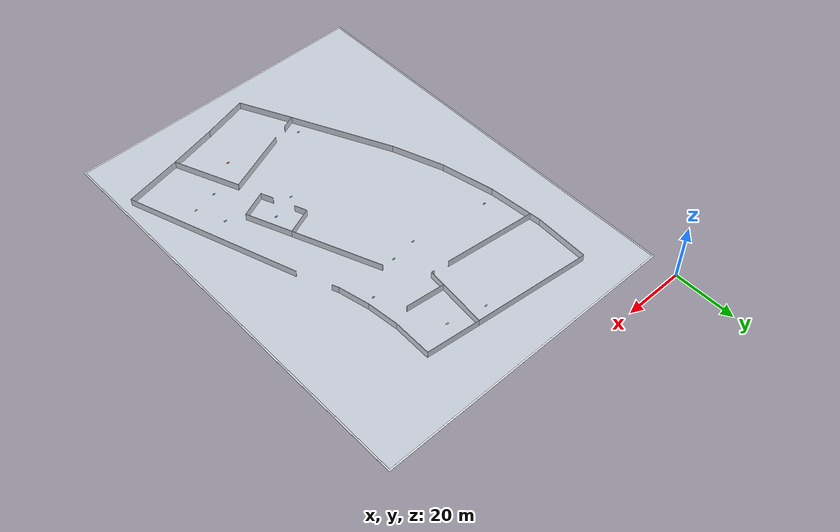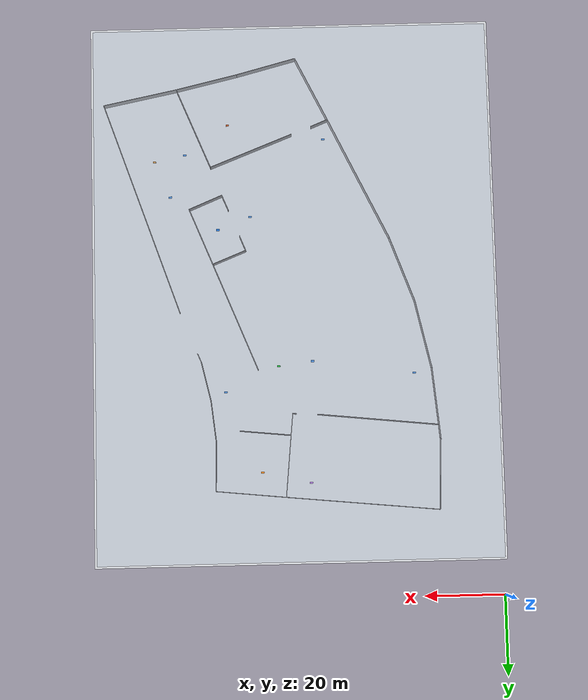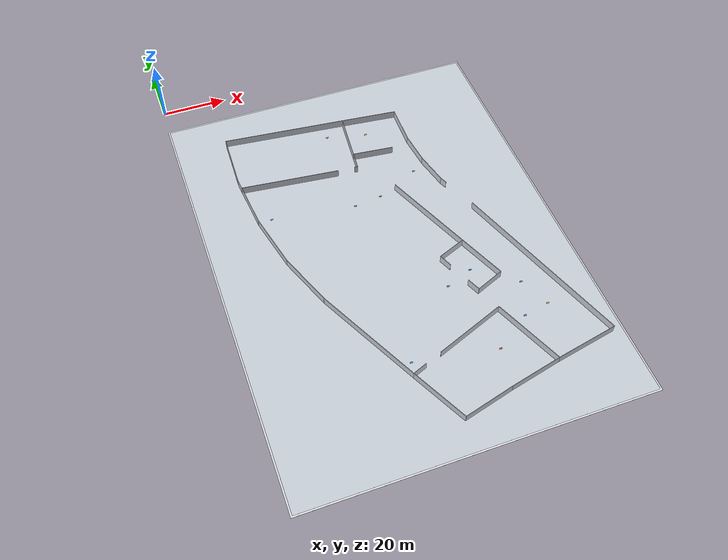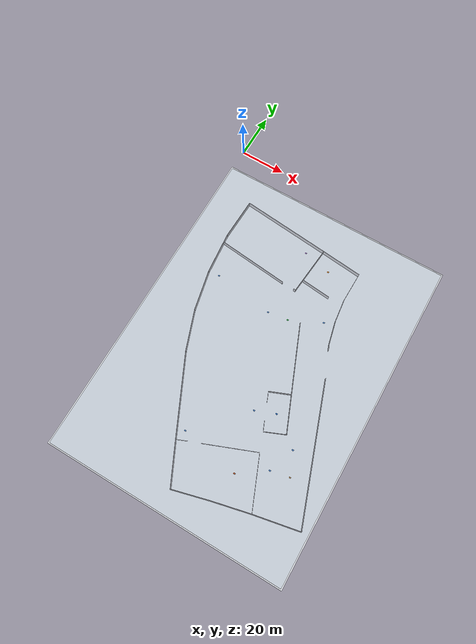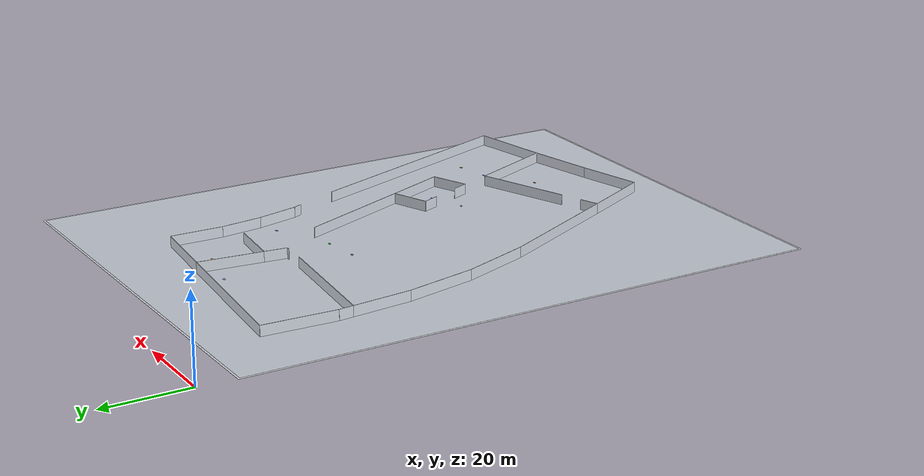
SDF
<sdf version="1.6">
 <world name="office">
  <plugin name="gazebo_ros_state" filename="libgazebo_ros_state.so">
   <ros><namespace>/gazebo</namespace></ros>
   <update_rate>10.0</update_rate>
  </plugin>
  <scene><ambient>0.86 0.87 0.89 1</ambient><background>0.94 0.95 0.97 1</background></scene>
  <physics name="default_physics" default="1" type="ode">
   <max_step_size>0.005</max_step_size>
   <real_time_factor>1</real_time_factor>
   <real_time_update_rate>200</real_time_update_rate>
  </physics>
  <light type="directional" name="sun">
   <pose>0 0 20 0 0 0</pose>
   <diffuse>0.85 0.85 0.85 1</diffuse>
   <direction>-0.4 0.15 -1.0</direction>
  </light>
  <model name="office_floor">
   <static>true</static>
   <pose>50.547 -78.140 -0.02 0 0 0</pose>
   <link name="link">
    <collision name="collision"><geometry><box><size>102.993 138.895 0.02</size></box></geometry></collision>
    <visual name="visual">
     <geometry><box><size>102.993 138.895 0.02</size></box></geometry>
     <material><ambient>0.90 0.91 0.93 1</ambient><diffuse>0.90 0.91 0.93 1</diffuse></material>
    </visual>
   </link>
  </model>
  <model name="office_floor_art">
   <static>true</static>
   <pose>50.547 -78.140 0.001 0 0 0</pose>
   <link name="link">
    <visual name="visual">
     <geometry><box><size>101.993 137.895 0.01</size></box></geometry>
     <material><ambient>0.80 0.83 0.87 1</ambient><diffuse>0.80 0.83 0.87 1</diffuse></material>
    </visual>
   </link>
  </model>
  <model name="office_wall_0">
   <static>true</static>
   <pose>65.699 -71.073 1.25 0 0 -1.187807</pose>
   <link name="link">
    <collision name="collision"><geometry><box><size>29.377 0.12 2.50</size></box></geometry></collision>
    <visual name="visual">
     <geometry><box><size>29.377 0.12 2.50</size></box></geometry>
     <material><ambient>0.78 0.80 0.84 1</ambient><diffuse>0.78 0.80 0.84 1</diffuse></material>
    </visual>
   </link>
  </model>
  <model name="office_wall_1">
   <static>true</static>
   <pose>66.986 -86.384 1.25 0 0 -2.760033</pose>
   <link name="link">
    <collision name="collision"><geometry><box><size>9.057 0.12 2.50</size></box></geometry></collision>
    <visual name="visual">
     <geometry><box><size>9.057 0.12 2.50</size></box></geometry>
     <material><ambient>0.78 0.80 0.84 1</ambient><diffuse>0.78 0.80 0.84 1</diffuse></material>
    </visual>
   </link>
  </model>
  <model name="office_wall_2">
   <static>true</static>
   <pose>63.554 -89.997 1.25 0 0 -1.190168</pose>
   <link name="link">
    <collision name="collision"><geometry><box><size>4.152 0.12 2.50</size></box></geometry></collision>
    <visual name="visual">
     <geometry><box><size>4.152 0.12 2.50</size></box></geometry>
     <material><ambient>0.78 0.80 0.84 1</ambient><diffuse>0.78 0.80 0.84 1</diffuse></material>
    </visual>
   </link>
  </model>
  <model name="office_wall_3">
   <static>true</static>
   <pose>74.091 -91.851 1.25 0 0 -1.185412</pose>
   <link name="link">
    <collision name="collision"><geometry><box><size>15.440 0.12 2.50</size></box></geometry></collision>
    <visual name="visual">
     <geometry><box><size>15.440 0.12 2.50</size></box></geometry>
     <material><ambient>0.78 0.80 0.84 1</ambient><diffuse>0.78 0.80 0.84 1</diffuse></material>
    </visual>
   </link>
  </model>
  <model name="office_wall_4">
   <static>true</static>
   <pose>72.809 -100.747 1.25 0 0 -2.747156</pose>
   <link name="link">
    <collision name="collision"><geometry><box><size>9.064 0.12 2.50</size></box></geometry></collision>
    <visual name="visual">
     <geometry><box><size>9.064 0.12 2.50</size></box></geometry>
     <material><ambient>0.78 0.80 0.84 1</ambient><diffuse>0.78 0.80 0.84 1</diffuse></material>
    </visual>
   </link>
  </model>
  <model name="office_wall_5">
   <static>true</static>
   <pose>67.823 -100.556 1.25 0 0 1.964148</pose>
   <link name="link">
    <collision name="collision"><geometry><box><size>4.185 0.12 2.50</size></box></geometry></collision>
    <visual name="visual">
     <geometry><box><size>4.185 0.12 2.50</size></box></geometry>
     <material><ambient>0.78 0.80 0.84 1</ambient><diffuse>0.78 0.80 0.84 1</diffuse></material>
    </visual>
   </link>
  </model>
  <model name="office_wall_6">
   <static>true</static>
   <pose>89.161 -99.519 1.25 0 0 1.904540</pose>
   <link name="link">
    <collision name="collision"><geometry><box><size>57.485 0.12 2.50</size></box></geometry></collision>
    <visual name="visual">
     <geometry><box><size>57.485 0.12 2.50</size></box></geometry>
     <material><ambient>0.78 0.80 0.84 1</ambient><diffuse>0.78 0.80 0.84 1</diffuse></material>
    </visual>
   </link>
  </model>
  <model name="office_wall_7">
   <static>true</static>
   <pose>89.211 -128.570 1.25 0 0 -2.942033</pose>
   <link name="link">
    <collision name="collision"><geometry><box><size>19.111 0.12 2.50</size></box></geometry></collision>
    <visual name="visual">
     <geometry><box><size>19.111 0.12 2.50</size></box></geometry>
     <material><ambient>0.78 0.80 0.84 1</ambient><diffuse>0.78 0.80 0.84 1</diffuse></material>
    </visual>
   </link>
  </model>
  <model name="office_wall_8">
   <static>true</static>
   <pose>75.613 -120.168 1.25 0 0 1.960790</pose>
   <link name="link">
    <collision name="collision"><geometry><box><size>22.264 0.12 2.50</size></box></geometry></collision>
    <visual name="visual">
     <geometry><box><size>22.264 0.12 2.50</size></box></geometry>
     <material><ambient>0.78 0.80 0.84 1</ambient><diffuse>0.78 0.80 0.84 1</diffuse></material>
    </visual>
   </link>
  </model>
  <model name="office_wall_9">
   <static>true</static>
   <pose>60.914 -113.974 1.25 0 0 -2.768010</pose>
   <link name="link">
    <collision name="collision"><geometry><box><size>22.483 0.12 2.50</size></box></geometry></collision>
    <visual name="visual">
     <geometry><box><size>22.483 0.12 2.50</size></box></geometry>
     <material><ambient>0.78 0.80 0.84 1</ambient><diffuse>0.78 0.80 0.84 1</diffuse></material>
    </visual>
   </link>
  </model>
  <model name="office_wall_10">
   <static>true</static>
   <pose>56.716 -136.080 1.25 0 0 0.257692</pose>
   <link name="link">
    <collision name="collision"><geometry><box><size>15.605 0.12 2.50</size></box></geometry></collision>
    <visual name="visual">
     <geometry><box><size>15.605 0.12 2.50</size></box></geometry>
     <material><ambient>0.78 0.80 0.84 1</ambient><diffuse>0.78 0.80 0.84 1</diffuse></material>
    </visual>
   </link>
  </model>
  <model name="office_wall_11">
   <static>true</static>
   <pose>72.053 -132.277 1.25 0 0 -2.912918</pose>
   <link name="link">
    <collision name="collision"><geometry><box><size>16.001 0.12 2.50</size></box></geometry></collision>
    <visual name="visual">
     <geometry><box><size>16.001 0.12 2.50</size></box></geometry>
     <material><ambient>0.78 0.80 0.84 1</ambient><diffuse>0.78 0.80 0.84 1</diffuse></material>
    </visual>
   </link>
  </model>
  <model name="office_wall_12">
   <static>true</static>
   <pose>43.319 -120.835 1.25 0 0 -2.756161</pose>
   <link name="link">
    <collision name="collision"><geometry><box><size>4.648 0.12 2.50</size></box></geometry></collision>
    <visual name="visual">
     <geometry><box><size>4.648 0.12 2.50</size></box></geometry>
     <material><ambient>0.78 0.80 0.84 1</ambient><diffuse>0.78 0.80 0.84 1</diffuse></material>
    </visual>
   </link>
  </model>
  <model name="office_wall_13">
   <static>true</static>
   <pose>45.168 -129.888 1.25 0 0 -1.115703</pose>
   <link name="link">
    <collision name="collision"><geometry><box><size>18.213 0.12 2.50</size></box></geometry></collision>
    <visual name="visual">
     <geometry><box><size>18.213 0.12 2.50</size></box></geometry>
     <material><ambient>0.78 0.80 0.84 1</ambient><diffuse>0.78 0.80 0.84 1</diffuse></material>
    </visual>
   </link>
  </model>
  <model name="office_wall_14">
   <static>true</static>
   <pose>33.693 -106.149 1.25 0 0 -1.123059</pose>
   <link name="link">
    <collision name="collision"><geometry><box><size>34.521 0.12 2.50</size></box></geometry></collision>
    <visual name="visual">
     <geometry><box><size>34.521 0.12 2.50</size></box></geometry>
     <material><ambient>0.78 0.80 0.84 1</ambient><diffuse>0.78 0.80 0.84 1</diffuse></material>
    </visual>
   </link>
  </model>
  <model name="office_wall_15">
   <static>true</static>
   <pose>18.357 -65.596 1.25 0 0 -1.355482</pose>
   <link name="link">
    <collision name="collision"><geometry><box><size>17.562 0.12 2.50</size></box></geometry></collision>
    <visual name="visual">
     <geometry><box><size>17.562 0.12 2.50</size></box></geometry>
     <material><ambient>0.78 0.80 0.84 1</ambient><diffuse>0.78 0.80 0.84 1</diffuse></material>
    </visual>
   </link>
  </model>
  <model name="office_wall_16">
   <static>true</static>
   <pose>23.227 -82.382 1.25 0 0 -1.221067</pose>
   <link name="link">
    <collision name="collision"><geometry><box><size>17.474 0.12 2.50</size></box></geometry></collision>
    <visual name="visual">
     <geometry><box><size>17.474 0.12 2.50</size></box></geometry>
     <material><ambient>0.78 0.80 0.84 1</ambient><diffuse>0.78 0.80 0.84 1</diffuse></material>
    </visual>
   </link>
  </model>
  <model name="office_wall_17">
   <static>true</static>
   <pose>15.164 -30.302 1.25 0 0 -1.608199</pose>
   <link name="link">
    <collision name="collision"><geometry><box><size>17.740 0.12 2.50</size></box></geometry></collision>
    <visual name="visual">
     <geometry><box><size>17.740 0.12 2.50</size></box></geometry>
     <material><ambient>0.78 0.80 0.84 1</ambient><diffuse>0.78 0.80 0.84 1</diffuse></material>
    </visual>
   </link>
  </model>
  <model name="office_wall_18">
   <static>true</static>
   <pose>75.024 -60.840 1.25 0 0 1.962102</pose>
   <link name="link">
    <collision name="collision"><geometry><box><size>2.227 0.12 2.50</size></box></geometry></collision>
    <visual name="visual">
     <geometry><box><size>2.227 0.12 2.50</size></box></geometry>
     <material><ambient>0.78 0.80 0.84 1</ambient><diffuse>0.78 0.80 0.84 1</diffuse></material>
    </visual>
   </link>
  </model>
  <model name="office_wall_19">
   <static>true</static>
   <pose>73.450 -54.839 1.25 0 0 1.797922</pose>
   <link name="link">
    <collision name="collision"><geometry><box><size>10.205 0.12 2.50</size></box></geometry></collision>
    <visual name="visual">
     <geometry><box><size>10.205 0.12 2.50</size></box></geometry>
     <material><ambient>0.78 0.80 0.84 1</ambient><diffuse>0.78 0.80 0.84 1</diffuse></material>
    </visual>
   </link>
  </model>
  <model name="office_wall_20">
   <static>true</static>
   <pose>71.739 -44.842 1.25 0 0 1.682306</pose>
   <link name="link">
    <collision name="collision"><geometry><box><size>10.114 0.12 2.50</size></box></geometry></collision>
    <visual name="visual">
     <geometry><box><size>10.114 0.12 2.50</size></box></geometry>
     <material><ambient>0.78 0.80 0.84 1</ambient><diffuse>0.78 0.80 0.84 1</diffuse></material>
    </visual>
   </link>
  </model>
  <model name="office_wall_21">
   <static>true</static>
   <pose>71.306 -33.501 1.25 0 0 1.550240</pose>
   <link name="link">
    <collision name="collision"><geometry><box><size>12.632 0.12 2.50</size></box></geometry></collision>
    <visual name="visual">
     <geometry><box><size>12.632 0.12 2.50</size></box></geometry>
     <material><ambient>0.78 0.80 0.84 1</ambient><diffuse>0.78 0.80 0.84 1</diffuse></material>
    </visual>
   </link>
  </model>
  <model name="office_wall_22">
   <static>true</static>
   <pose>51.331 -46.232 1.25 0 0 -0.164354</pose>
   <link name="link">
    <collision name="collision"><geometry><box><size>0.959 0.12 2.50</size></box></geometry></collision>
    <visual name="visual">
     <geometry><box><size>0.959 0.12 2.50</size></box></geometry>
     <material><ambient>0.78 0.80 0.84 1</ambient><diffuse>0.78 0.80 0.84 1</diffuse></material>
    </visual>
   </link>
  </model>
  <model name="office_wall_23">
   <static>true</static>
   <pose>52.079 -43.572 1.25 0 0 1.470555</pose>
   <link name="link">
    <collision name="collision"><geometry><box><size>5.504 0.12 2.50</size></box></geometry></collision>
    <visual name="visual">
     <geometry><box><size>5.504 0.12 2.50</size></box></geometry>
     <material><ambient>0.78 0.80 0.84 1</ambient><diffuse>0.78 0.80 0.84 1</diffuse></material>
    </visual>
   </link>
  </model>
  <model name="office_wall_24">
   <static>true</static>
   <pose>58.745 -41.502 1.25 0 0 -0.104192</pose>
   <link name="link">
    <collision name="collision"><geometry><box><size>12.850 0.12 2.50</size></box></geometry></collision>
    <visual name="visual">
     <geometry><box><size>12.850 0.12 2.50</size></box></geometry>
     <material><ambient>0.78 0.80 0.84 1</ambient><diffuse>0.78 0.80 0.84 1</diffuse></material>
    </visual>
   </link>
  </model>
  <model name="office_wall_25">
   <static>true</static>
   <pose>53.114 -33.083 1.25 0 0 -1.668432</pose>
   <link name="link">
    <collision name="collision"><geometry><box><size>15.576 0.12 2.50</size></box></geometry></collision>
    <visual name="visual">
     <geometry><box><size>15.576 0.12 2.50</size></box></geometry>
     <material><ambient>0.78 0.80 0.84 1</ambient><diffuse>0.78 0.80 0.84 1</diffuse></material>
    </visual>
   </link>
  </model>
  <model name="office_wall_26">
   <static>true</static>
   <pose>62.654 -26.259 1.25 0 0 3.036423</pose>
   <link name="link">
    <collision name="collision"><geometry><box><size>17.660 0.12 2.50</size></box></geometry></collision>
    <visual name="visual">
     <geometry><box><size>17.660 0.12 2.50</size></box></geometry>
     <material><ambient>0.78 0.80 0.84 1</ambient><diffuse>0.78 0.80 0.84 1</diffuse></material>
    </visual>
   </link>
  </model>
  <model name="office_wall_27">
   <static>true</static>
   <pose>34.685 -23.386 1.25 0 0 -0.101105</pose>
   <link name="link">
    <collision name="collision"><geometry><box><size>38.574 0.12 2.50</size></box></geometry></collision>
    <visual name="visual">
     <geometry><box><size>38.574 0.12 2.50</size></box></geometry>
     <material><ambient>0.78 0.80 0.84 1</ambient><diffuse>0.78 0.80 0.84 1</diffuse></material>
    </visual>
   </link>
  </model>
  <model name="office_wall_28">
   <static>true</static>
   <pose>14.989 -40.912 1.25 0 0 -1.481229</pose>
   <link name="link">
    <collision name="collision"><geometry><box><size>3.506 0.12 2.50</size></box></geometry></collision>
    <visual name="visual">
     <geometry><box><size>3.506 0.12 2.50</size></box></geometry>
     <material><ambient>0.78 0.80 0.84 1</ambient><diffuse>0.78 0.80 0.84 1</diffuse></material>
    </visual>
   </link>
  </model>
  <model name="office_wall_29">
   <static>true</static>
   <pose>15.814 -49.838 1.25 0 0 -1.478092</pose>
   <link name="link">
    <collision name="collision"><geometry><box><size>14.422 0.12 2.50</size></box></geometry></collision>
    <visual name="visual">
     <geometry><box><size>14.422 0.12 2.50</size></box></geometry>
     <material><ambient>0.78 0.80 0.84 1</ambient><diffuse>0.78 0.80 0.84 1</diffuse></material>
    </visual>
   </link>
  </model>
  <model name="office_wall_30">
   <static>true</static>
   <pose>30.353 -44.280 1.25 0 0 3.035320</pose>
   <link name="link">
    <collision name="collision"><geometry><box><size>30.586 0.12 2.50</size></box></geometry></collision>
    <visual name="visual">
     <geometry><box><size>30.586 0.12 2.50</size></box></geometry>
     <material><ambient>0.78 0.80 0.84 1</ambient><diffuse>0.78 0.80 0.84 1</diffuse></material>
    </visual>
   </link>
  </model>
  <model name="office_wall_31">
   <static>true</static>
   <pose>65.754 -71.134 1.25 0 0 -1.187136</pose>
   <link name="link">
    <collision name="collision"><geometry><box><size>29.291 0.12 2.50</size></box></geometry></collision>
    <visual name="visual">
     <geometry><box><size>29.291 0.12 2.50</size></box></geometry>
     <material><ambient>0.78 0.80 0.84 1</ambient><diffuse>0.78 0.80 0.84 1</diffuse></material>
    </visual>
   </link>
  </model>
  <model name="office_wall_32">
   <static>true</static>
   <pose>74.142 -91.881 1.25 0 0 -1.185495</pose>
   <link name="link">
    <collision name="collision"><geometry><box><size>15.466 0.12 2.50</size></box></geometry></collision>
    <visual name="visual">
     <geometry><box><size>15.466 0.12 2.50</size></box></geometry>
     <material><ambient>0.78 0.80 0.84 1</ambient><diffuse>0.78 0.80 0.84 1</diffuse></material>
    </visual>
   </link>
  </model>
  <model name="marker_charger">
   <static>true</static>
   <pose>55.074 -58.483 0.03 0 0 0</pose>
   <link name="link">
    <visual name="visual">
     <geometry><box><size>0.80 0.45 0.03</size></box></geometry>
     <material><ambient>0.15 0.72 0.26 1</ambient><diffuse>0.15 0.72 0.26 1</diffuse></material>
    </visual>
   </link>
  </model>
  <model name="marker_supplies">
   <static>true</static>
   <pose>59.683 -31.665 0.03 0 0 0</pose>
   <link name="link">
    <visual name="visual">
     <geometry><box><size>0.80 0.45 0.03</size></box></geometry>
     <material><ambient>0.95 0.55 0.15 1</ambient><diffuse>0.95 0.55 0.15 1</diffuse></material>
    </visual>
   </link>
  </model>
  <model name="marker_pantry">
   <static>true</static>
   <pose>69.808 -93.922 0.03 0 0 0</pose>
   <link name="link">
    <visual name="visual">
     <geometry><box><size>0.80 0.45 0.03</size></box></geometry>
     <material><ambient>0.14 0.46 0.84 1</ambient><diffuse>0.14 0.46 0.84 1</diffuse></material>
    </visual>
   </link>
  </model>
  <model name="marker_lounge">
   <static>true</static>
   <pose>85.862 -112.075 0.03 0 0 0</pose>
   <link name="link">
    <visual name="visual">
     <geometry><box><size>0.80 0.45 0.03</size></box></geometry>
     <material><ambient>0.78 0.58 0.34 1</ambient><diffuse>0.78 0.58 0.34 1</diffuse></material>
    </visual>
   </link>
  </model>
  <model name="marker_hardware">
   <static>true</static>
   <pose>66.934 -121.321 0.03 0 0 0</pose>
   <link name="link">
    <visual name="visual">
     <geometry><box><size>0.80 0.45 0.03</size></box></geometry>
     <material><ambient>0.75 0.36 0.18 1</ambient><diffuse>0.75 0.36 0.18 1</diffuse></material>
    </visual>
   </link>
  </model>
  <model name="marker_coe">
   <static>true</static>
   <pose>47.486 -28.799 0.03 0 0 0</pose>
   <link name="link">
    <visual name="visual">
     <geometry><box><size>0.80 0.45 0.03</size></box></geometry>
     <material><ambient>0.70 0.50 0.90 1</ambient><diffuse>0.70 0.50 0.90 1</diffuse></material>
    </visual>
   </link>
  </model>
  <model name="marker_patrol_a1">
   <static>true</static>
   <pose>46.488 -59.564 0.03 0 0 0</pose>
   <link name="link">
    <visual name="visual">
     <geometry><box><size>0.80 0.45 0.03</size></box></geometry>
     <material><ambient>0.30 0.55 0.85 1</ambient><diffuse>0.30 0.55 0.85 1</diffuse></material>
    </visual>
   </link>
  </model>
  <model name="marker_patrol_a2">
   <static>true</static>
   <pose>81.948 -102.733 0.03 0 0 0</pose>
   <link name="link">
    <visual name="visual">
     <geometry><box><size>0.80 0.45 0.03</size></box></geometry>
     <material><ambient>0.30 0.55 0.85 1</ambient><diffuse>0.30 0.55 0.85 1</diffuse></material>
    </visual>
   </link>
  </model>
  <model name="marker_patrol_b">
   <static>true</static>
   <pose>20.761 -56.018 0.03 0 0 0</pose>
   <link name="link">
    <visual name="visual">
     <geometry><box><size>0.80 0.45 0.03</size></box></geometry>
     <material><ambient>0.30 0.55 0.85 1</ambient><diffuse>0.30 0.55 0.85 1</diffuse></material>
    </visual>
   </link>
  </model>
  <model name="marker_patrol_c">
   <static>true</static>
   <pose>42.352 -117.099 0.03 0 0 0</pose>
   <link name="link">
    <visual name="visual">
     <geometry><box><size>0.80 0.45 0.03</size></box></geometry>
     <material><ambient>0.30 0.55 0.85 1</ambient><diffuse>0.30 0.55 0.85 1</diffuse></material>
    </visual>
   </link>
  </model>
  <model name="marker_patrol_d1">
   <static>true</static>
   <pose>61.580 -97.149 0.03 0 0 0</pose>
   <link name="link">
    <visual name="visual">
     <geometry><box><size>0.80 0.45 0.03</size></box></geometry>
     <material><ambient>0.30 0.55 0.85 1</ambient><diffuse>0.30 0.55 0.85 1</diffuse></material>
    </visual>
   </link>
  </model>
  <model name="marker_patrol_d2">
   <static>true</static>
   <pose>68.539 -52.115 0.03 0 0 0</pose>
   <link name="link">
    <visual name="visual">
     <geometry><box><size>0.80 0.45 0.03</size></box></geometry>
     <material><ambient>0.30 0.55 0.85 1</ambient><diffuse>0.30 0.55 0.85 1</diffuse></material>
    </visual>
   </link>
  </model>
  <model name="marker_backup_charger">
   <static>true</static>
   <pose>78.007 -113.697 0.03 0 0 0</pose>
   <link name="link">
    <visual name="visual">
     <geometry><box><size>0.80 0.45 0.03</size></box></geometry>
     <material><ambient>0.30 0.55 0.85 1</ambient><diffuse>0.30 0.55 0.85 1</diffuse></material>
    </visual>
   </link>
  </model>
 </world>
</sdf>
